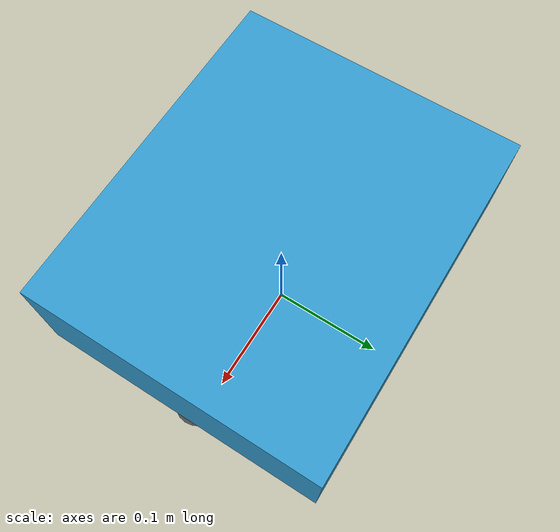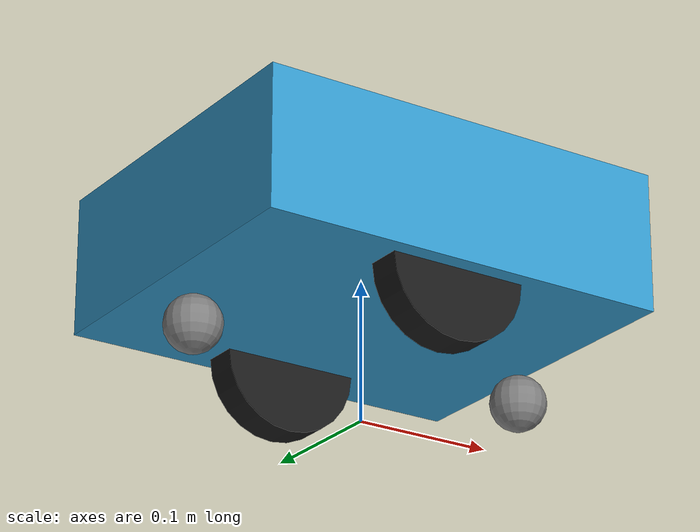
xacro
<?xml version="1.0"?>

<robot xmlns:xacro="http://www.ros.org/wiki/xacro">

  <!-- ROBOT PARAMETERS                            -->
  <!--
    These values define the physical robot.
    Modify these to match your actual hardware.
  -->

  <!-- Chassis dimensions -->
  <xacro:property name="chassis_length" value="0.30"/>
  <xacro:property name="chassis_width" value="0.25"/>
  <xacro:property name="chassis_height" value="0.10"/>
  <xacro:property name="chassis_mass" value="5.0"/>

  <!-- Drive wheel parameters -->
  <xacro:property name="wheel_radius" value="0.05"/>
  <xacro:property name="wheel_width" value="0.025"/>
  <xacro:property name="wheel_mass" value="0.5"/>
  <xacro:property name="wheel_separation" value="0.20"/>

  <!-- Caster wheel parameters -->
  <xacro:property name="caster_radius" value="0.02"/>
  <xacro:property name="caster_mass" value="0.1"/>

  <!-- Ground clearance -->
  <xacro:property name="ground_clearance" value="0.02"/>

  <!-- INERTIA MACROS                              -->
  <!--
    Inertia tensors are required for physics simulation.
    These macros calculate standard shapes' inertias.
  -->

  <xacro:macro name="box_inertia" params="m x y z">
    <inertia ixx="${m*(y*y+z*z)/12.0}" ixy="0.0" ixz="0.0"
             iyy="${m*(x*x+z*z)/12.0}" iyz="0.0"
             izz="${m*(x*x+y*y)/12.0}"/>
  </xacro:macro>

  <xacro:macro name="cylinder_inertia" params="m r h">
    <inertia ixx="${m*(3*r*r+h*h)/12.0}" ixy="0.0" ixz="0.0"
             iyy="${m*(3*r*r+h*h)/12.0}" iyz="0.0"
             izz="${m*r*r/2.0}"/>
  </xacro:macro>

  <xacro:macro name="sphere_inertia" params="m r">
    <inertia ixx="${2*m*r*r/5.0}" ixy="0.0" ixz="0.0"
             iyy="${2*m*r*r/5.0}" iyz="0.0"
             izz="${2*m*r*r/5.0}"/>
  </xacro:macro>

  <!-- BASE FOOTPRINT (Ground Projection)          -->
  <!--
    base_footprint is a virtual frame at ground level.
    Nav2 uses this as the robot's 2D position.

    TF: base_footprint -> base_link (fixed, Z offset)
  -->

  <link name="base_footprint"/>

  <joint name="base_footprint_joint" type="fixed">
    <parent link="base_footprint"/>
    <child link="base_link"/>
    <origin xyz="0 0 ${wheel_radius + ground_clearance}" rpy="0 0 0"/>
  </joint>

  <!-- BASE LINK (Chassis)                         -->
  <!--
    Main robot body. All other links attach here.
    This is the reference frame for most calculations.
  -->

  <link name="base_link">
    <visual>
      <origin xyz="0 0 ${chassis_height/2}" rpy="0 0 0"/>
      <geometry>
        <box size="${chassis_length} ${chassis_width} ${chassis_height}"/>
      </geometry>
      <material name="turtlebot_body">
        <color rgba="0.2 0.6 0.8 1.0"/>
      </material>
    </visual>
    <collision>
      <origin xyz="0 0 ${chassis_height/2}" rpy="0 0 0"/>
      <geometry>
        <box size="${chassis_length} ${chassis_width} ${chassis_height}"/>
      </geometry>
    </collision>
    <inertial>
      <origin xyz="0 0 ${chassis_height/2}" rpy="0 0 0"/>
      <mass value="${chassis_mass}"/>
      <xacro:box_inertia m="${chassis_mass}" x="${chassis_length}" y="${chassis_width}" z="${chassis_height}"/>
    </inertial>
  </link>

  <!-- DRIVE WHEEL MACRO                           -->
  <!--
    Creates a drive wheel with continuous rotation.

    Parameters:
    - name: left_wheel or right_wheel
    - y_offset: +/- wheel_separation/2
  -->

  <xacro:macro name="drive_wheel" params="name y_offset">
    <joint name="${name}_joint" type="continuous">
      <parent link="base_link"/>
      <child link="${name}_link"/>
      <origin xyz="0 ${y_offset} 0" rpy="0 0 0"/>
      <axis xyz="0 1 0"/>
      <limit effort="10.0" velocity="10.0"/>
      <dynamics damping="0.1" friction="0.1"/>
    </joint>

    <link name="${name}_link">
      <visual>
        <origin xyz="0 0 0" rpy="${pi/2} 0 0"/>
        <geometry>
          <cylinder radius="${wheel_radius}" length="${wheel_width}"/>
        </geometry>
        <material name="wheel_black">
          <color rgba="0.1 0.1 0.1 1.0"/>
        </material>
      </visual>
      <collision>
        <origin xyz="0 0 0" rpy="${pi/2} 0 0"/>
        <geometry>
          <cylinder radius="${wheel_radius}" length="${wheel_width}"/>
        </geometry>
      </collision>
      <inertial>
        <origin xyz="0 0 0" rpy="${pi/2} 0 0"/>
        <mass value="${wheel_mass}"/>
        <xacro:cylinder_inertia m="${wheel_mass}" r="${wheel_radius}" h="${wheel_width}"/>
      </inertial>
    </link>
  </xacro:macro>

  <!-- Create left and right drive wheels -->
  <xacro:drive_wheel name="left_wheel" y_offset="${wheel_separation/2}"/>
  <xacro:drive_wheel name="right_wheel" y_offset="${-wheel_separation/2}"/>

  <!-- CASTER WHEEL MACRO                          -->
  <!--
    Creates a passive caster (spherical) for stability.
    These don't drive, just support the robot.
  -->

  <xacro:macro name="caster_wheel" params="name x_offset">
    <joint name="${name}_joint" type="fixed">
      <parent link="base_link"/>
      <child link="${name}_link"/>
      <origin xyz="${x_offset} 0 ${-wheel_radius + caster_radius}" rpy="0 0 0"/>
    </joint>

    <link name="${name}_link">
      <visual>
        <geometry>
          <sphere radius="${caster_radius}"/>
        </geometry>
        <material name="caster_gray">
          <color rgba="0.5 0.5 0.5 1.0"/>
        </material>
      </visual>
      <collision>
        <geometry>
          <sphere radius="${caster_radius}"/>
        </geometry>
      </collision>
      <inertial>
        <mass value="${caster_mass}"/>
        <xacro:sphere_inertia m="${caster_mass}" r="${caster_radius}"/>
      </inertial>
    </link>
  </xacro:macro>

  <!-- Create front and rear casters -->
  <xacro:caster_wheel name="front_caster" x_offset="${chassis_length/2 - caster_radius}"/>
  <xacro:caster_wheel name="rear_caster" x_offset="${-chassis_length/2 + caster_radius}"/>

</robot>
